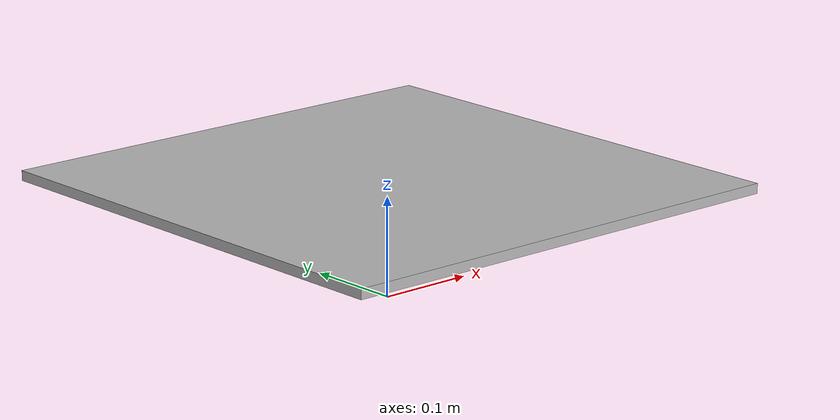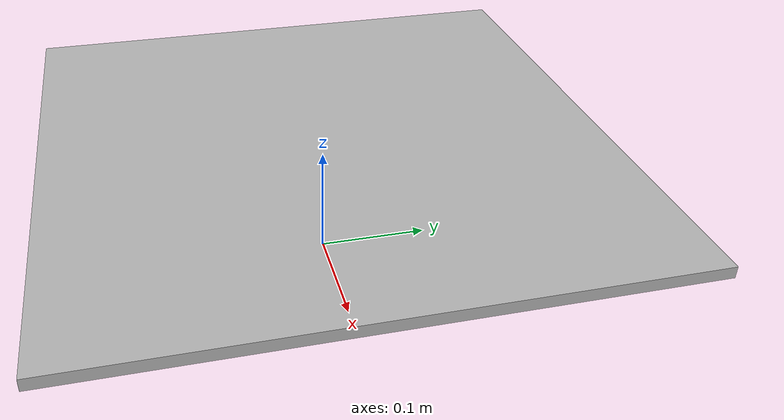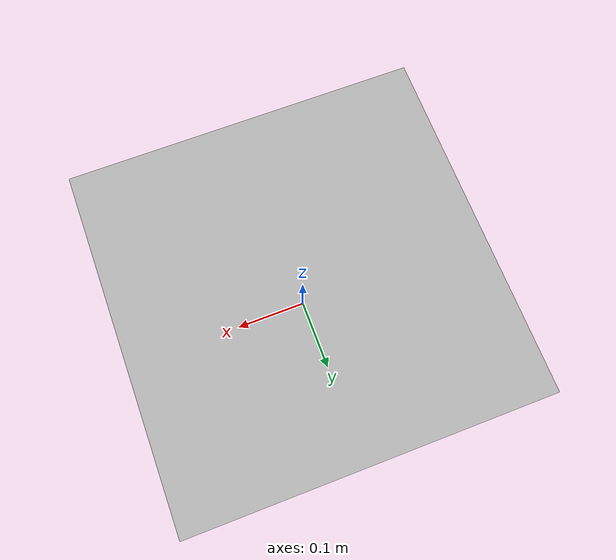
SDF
<?xml version='1.0'?>
<sdf version='1.4'>
  <model name="mark_label_h">
    <link name='link'>
      <pose>0 0 0.115 0 0 0</pose>
      <inertial>
        <mass>0.390</mass>
        <inertia>
          <ixx>0.00058</ixx>
          <ixy>0</ixy>
          <ixz>0</ixz>
          <iyy>0.00058</iyy>
          <iyz>0</iyz>
          <izz>0.00019</izz>
        </inertia>
      </inertial>
      <collision name='collision'>
        <geometry>
                <box>
                  <size>.496 .496 .01</size>
                </box>
        </geometry>
      </collision>

      <visual name='visual'>
        <geometry>
                <box>
                  <size>.496 .496 .01</size>
                </box>
        </geometry>

        <material>
          <script>
            <uri>model://mark_label_h/materials/scripts</uri>
            <uri>model://mark_label_h/materials/textures</uri>
            <name>Mark/Diffuse_h</name>
          </script>
        </material>
      </visual>
    </link>     
  </model>
</sdf>
